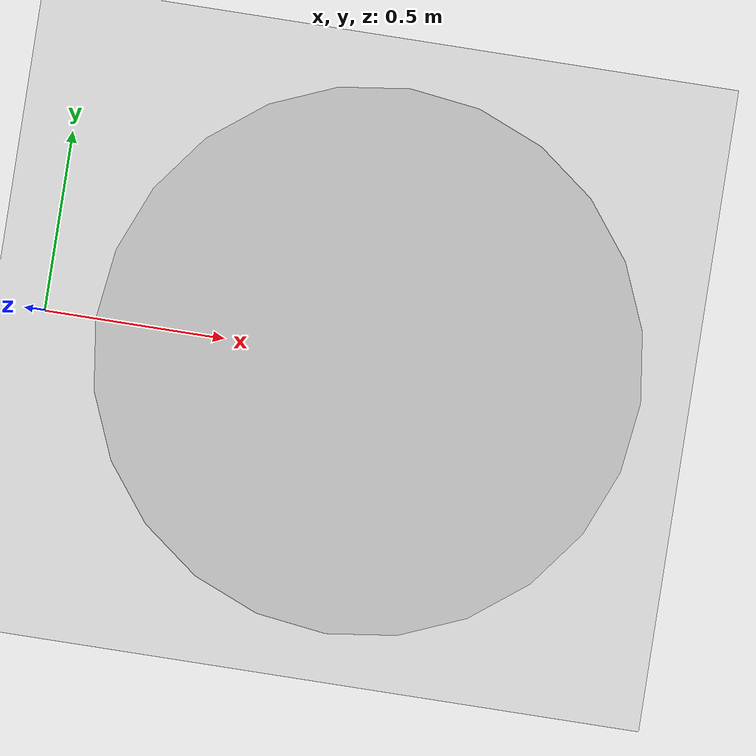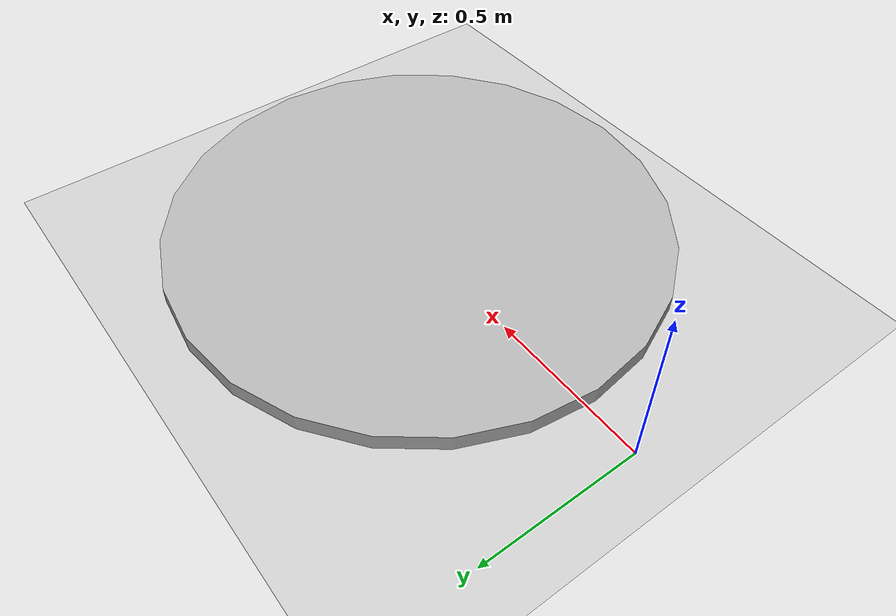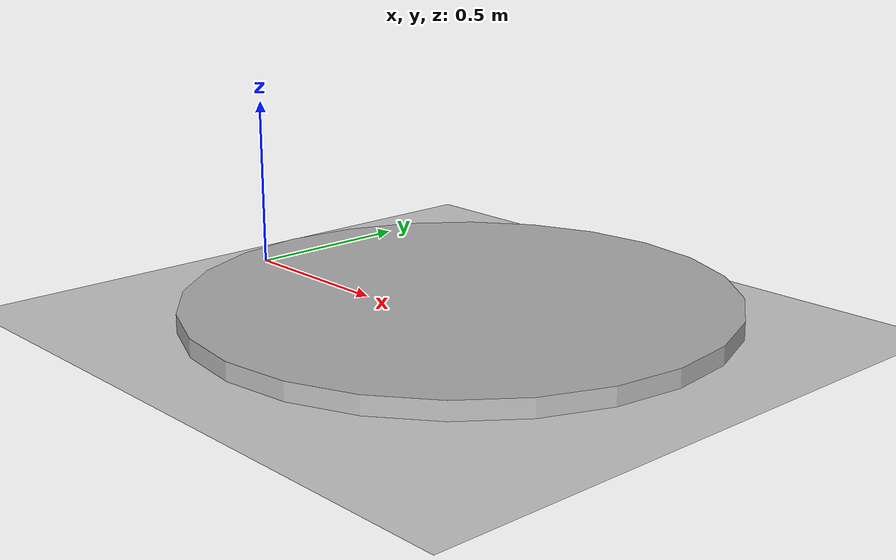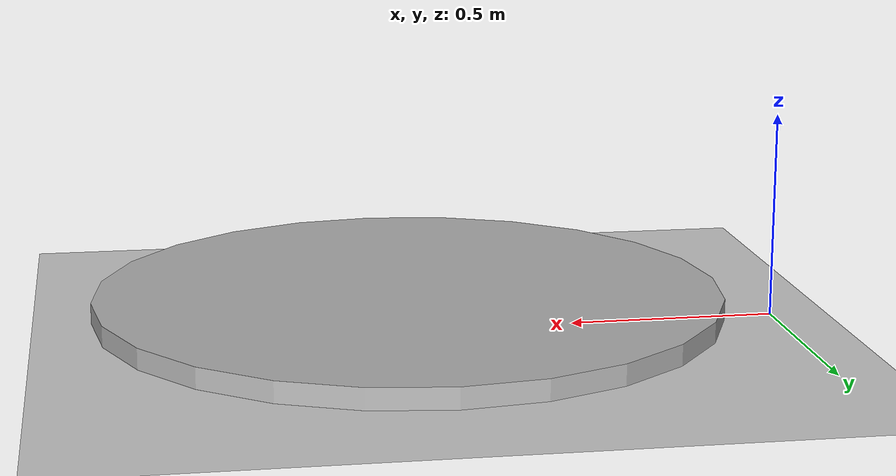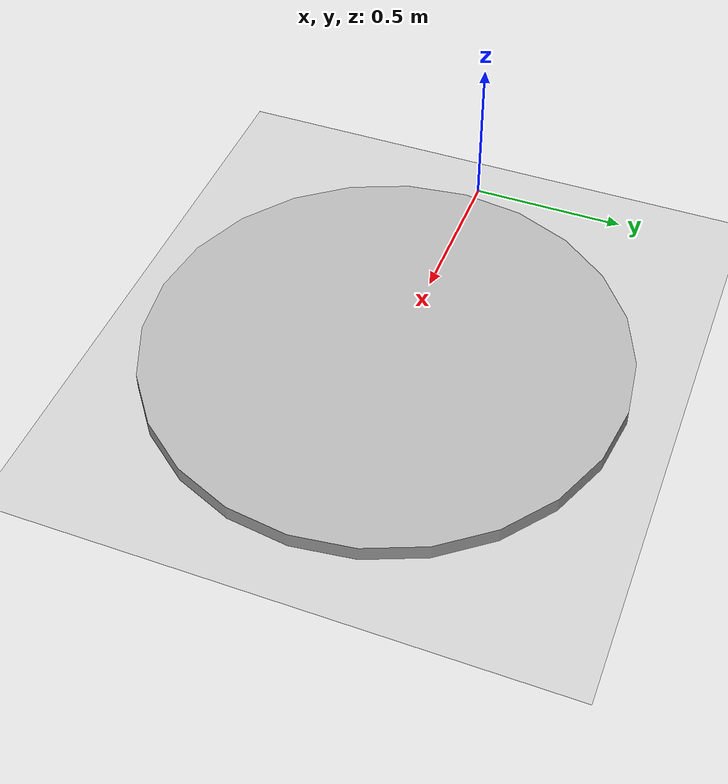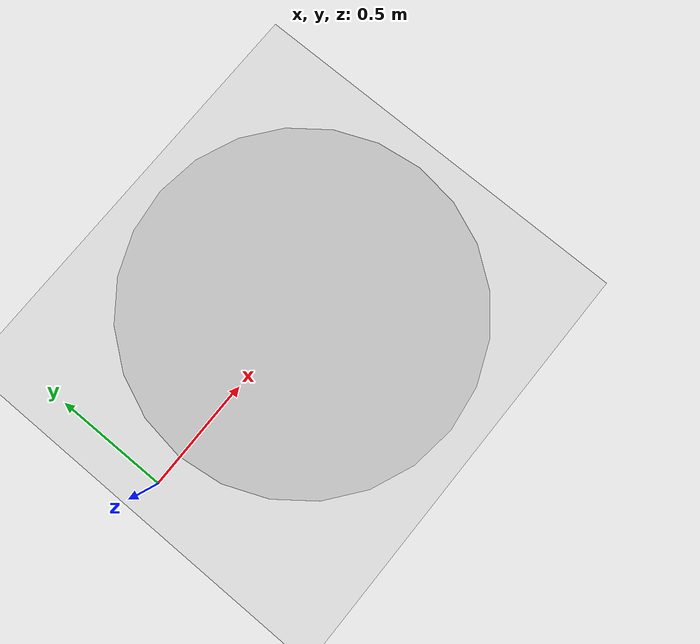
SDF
<?xml version="1.0" ?>
<sdf version="1.4">
  <world name="default">
    <include>
      <uri>model://ground_plane</uri>
    </include>
    <include>
      <uri>model://sun</uri>
    </include>

    <physics type="ode">
      <max_step_size>0.001</max_step_size>
      <real_time_factor>1</real_time_factor>
      <real_time_update_rate>1000</real_time_update_rate>
      <!-- (2022-12-20) humble: change gravity from [0 0 -9.81] to [0 0 0] -->
      <gravity>0 0 -9.81</gravity>
    </physics>

    <model name="rotating_table">
      <static>false</static>
      <pose>0.9 0 0 0 0 0</pose> <!-- x y z roll pitch yaw -->
      <!-- Base link (fixed to world) -->
      <link name="base">
        <static>true</static>
        <inertial>
          <mass>500.0</mass>
          <inertia>
            <ixx>100.01</ixx>
            <iyy>100.01</iyy>
            <izz>100.01</izz>
            <ixy>0.0</ixy>
            <ixz>0.0</ixz>
            <iyz>0.0</iyz>
          </inertia>
        </inertial>
        <pose>0 0 0 0 0 0</pose>
        <collision name="collision">
          <geometry>
            <cylinder>
              <radius>0.3</radius>
              <length>0.05</length>
            </cylinder>
          </geometry>
        </collision>
        <visual name="visual">
          <geometry>
            <cylinder>
              <radius>0.3</radius>
              <length>0.05</length>
            </cylinder>
          </geometry>
          <material>
            <ambient>0.3 0.3 0.3 1</ambient>
            <diffuse>0.3 0.3 0.3 1</diffuse>
          </material>
        </visual>
      </link>
      <!-- Tabletop link (rotates) -->
      <link name="tabletop">
        <inertial>
          <mass>500.0</mass>
          <inertia>
            <ixx>100.01</ixx>
            <iyy>100.01</iyy>
            <izz>100.01</izz>
            <ixy>0.0</ixy>
            <ixz>0.0</ixz>
            <iyz>0.0</iyz>
          </inertia>
        </inertial>
        <pose>0 0 0.075 0 0 0</pose>
        <collision name="collision">
          <geometry>
            <cylinder>
              <radius>0.75</radius>
              <length>0.05</length>
            </cylinder>
          </geometry>
        </collision>
        <visual name="visual">
          <geometry>
            <cylinder>
              <radius>0.75</radius>
              <length>0.05</length>
            </cylinder>
          </geometry>
          <material>
            <ambient>0.7 0.7 0.7 1</ambient>
            <diffuse>0.7 0.7 0.7 1</diffuse>
          </material>
        </visual>
      </link>
      <!-- Revolute joint for rotation -->
      <joint name="table_rotation" type="revolute">
        <parent>base</parent>
        <child>tabletop</child>
        <pose>0 0 0.075 0 0 0</pose>
        <axis>
          <xyz>0 0 1</xyz>
          <limit>
            <lower>-1e16</lower>
            <upper>1e16</upper>
            <effort>100</effort>
            <velocity>0.2</velocity>
          </limit>
          <dynamics>
            <damping>1.5</damping>
          </dynamics>
        </axis>
      </joint>
      <!-- Plugin to apply constant velocity to the joint -->
      <plugin name="ignition::gazebo::systems::ApplyJointForce" filename="ignition-gazebo-apply-joint-force-system">
        <joint_name>table_rotation</joint_name>
        <force>2.0</force> <!-- Constant torque in Nm - adjust to get desired speed -->
      </plugin>
    </model>

  </world>
</sdf>
